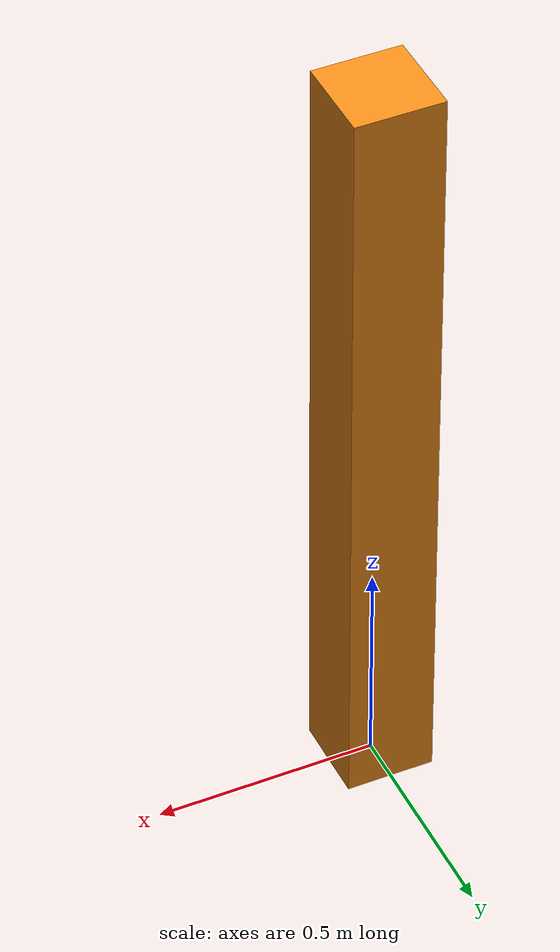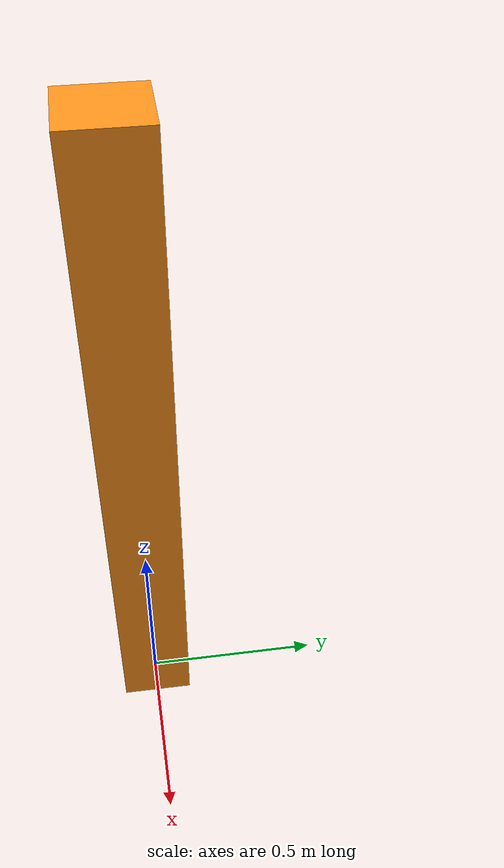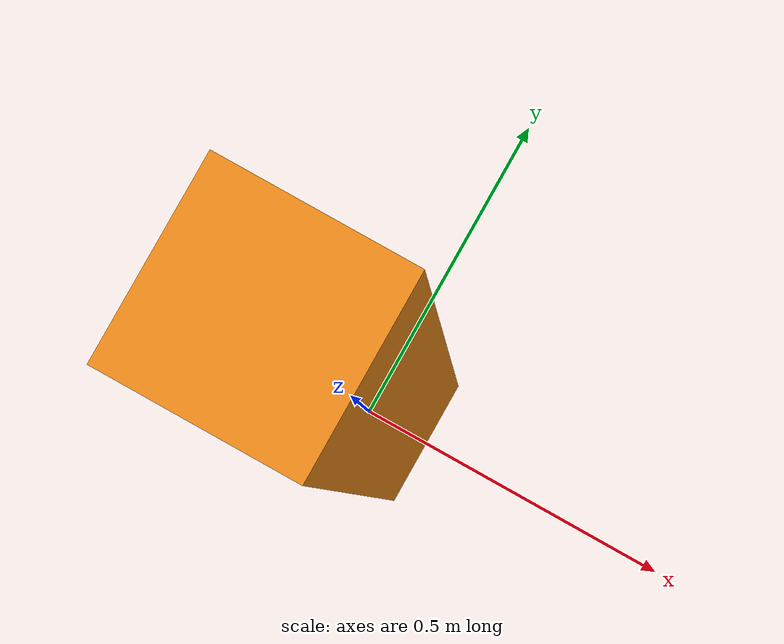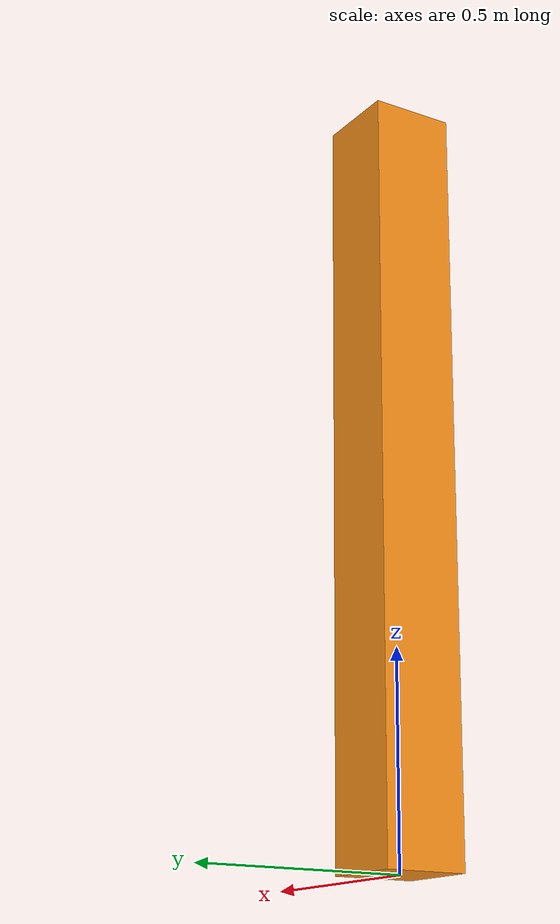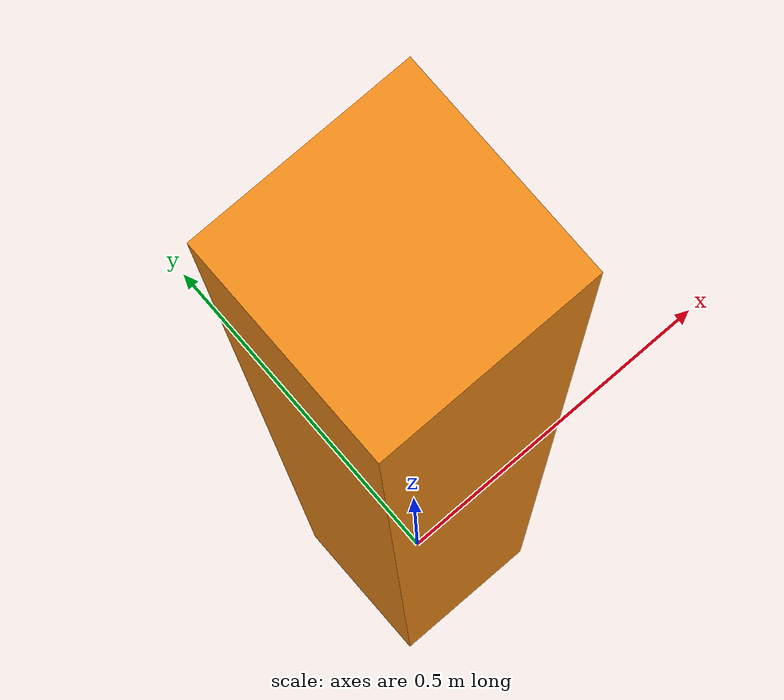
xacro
<?xml version='1.0'?>

<robot name="pole2" xmlns:xacro="http://www.ros.org/wiki/xacro">

  <!-- gazebo plugin files for sensors -->
  <xacro:include filename="$(find robotic_charger)/urdf/pole2.gazebo" />

  <!-- Constants for robot dimensions -->
  <xacro:property name="PI" value="3.1415926535897931"/>
  <xacro:property name="mass" value="100" /> <!-- arbitrary value for mass -->
  <xacro:property name="width" value="0.2" /> <!-- Square dimensions (widthxwidth) of beams -->
  <xacro:property name="height" value="1.8" /> <!-- Link 1 -->
  <xacro:property name="camera" value="0.1" /> <!-- Size of square 'camera' box -->

  <!-- Used for fixing pole to Gazebo 'base_link' -->
  <link name="world"/>

  <joint name="fixed" type="fixed">
    <parent link="world"/>
    <child link="pole2"/>
  </joint>

  <!-- Base link -->
  <link name='pole2'>
    <pose>0 0 0 0 0 0</pose>

    <inertial>
      <mass value="${mass}"/>
      <origin xyz="0 0 ${height/2}" rpy=" 0 0 0"/>
      <inertia
          ixx="${mass / 12.0 * (width*width + height*height)}" ixy="0" ixz="0"
          iyy="${mass / 12.0 * (height*height + width*width)}" iyz="0"
          izz="${mass / 12.0 * (width*width + width*width)}"
      />
    </inertial>

    <collision name='collision'>
      <origin xyz="0 0 ${height/2}" rpy=" 0 0 0"/>
      <geometry>
        <box size="${width} ${width} ${height}"/>
      </geometry>
    </collision>

    <visual name='pole2_visual'>
      <origin xyz="0 0 ${height/2}" rpy=" 0 0 0"/>
      <geometry>
        <box size="${width} ${width} ${height}"/>
      </geometry>
    </visual>

    <joint name="camera_joint" type="fixed">
      <axis xyz="0 1 0" />
      <origin xyz="${camera} 0 ${height}" rpy="0 0 0"/>
      <parent link="pole2"/>
      <child link="camera"/>
    </joint>

    <!-- Camera -->
    <link name="camera">
      <collision>
        <origin xyz="0 0 0" rpy="0 0 0"/>
        <geometry>
          <box size="${camera} ${camera} ${camera}"/>
        </geometry>
      </collision>

      <visual>
        <origin xyz="0 0 0" rpy="0 0 0"/>
        <geometry>
          <box size="${camera} ${camera} ${camera}"/>
        </geometry>
        <material name="green"/>
      </visual>

      <inertial>
        <mass value="1e-5" />
        <origin xyz="0 0 0" rpy="0 0 0"/>
        <inertia ixx="1e-6" ixy="0" ixz="0" iyy="1e-6" iyz="0" izz="1e-6" />
      </inertial>
    </link>

    <!-- generate an optical frame http://www.ros.org/reps/rep-0103.html#suffix-frames
        so that ros and opencv can operate on the camera frame correctly -->
    <joint name="camera_optical_joint" type="fixed">
      <!-- these values have to be these values otherwise the gazebo camera image
          won't be aligned properly with the frame it is supposedly originating from -->
      <origin xyz="0 0 0" rpy="${-pi/2} 0 ${-pi/2}"/>
      <parent link="camera"/>
      <child link="camera_optical"/>
    </joint>

    <link name="camera_optical">
    </link>

    <gazebo reference="camera">
      <material>Gazebo/Green</material>
    </gazebo>

    <gazebo reference="pole2">
      <material>Gazebo/Orange</material>
    </gazebo>

  </link>

</robot>
